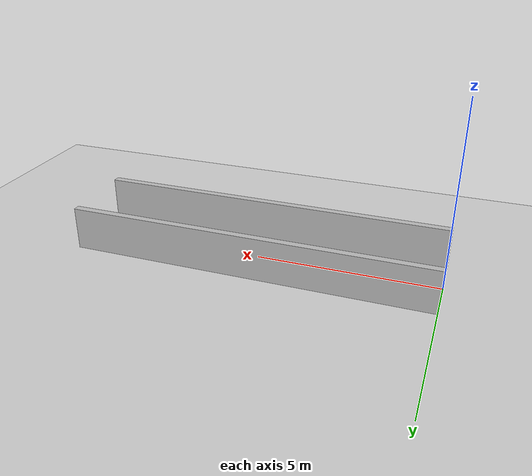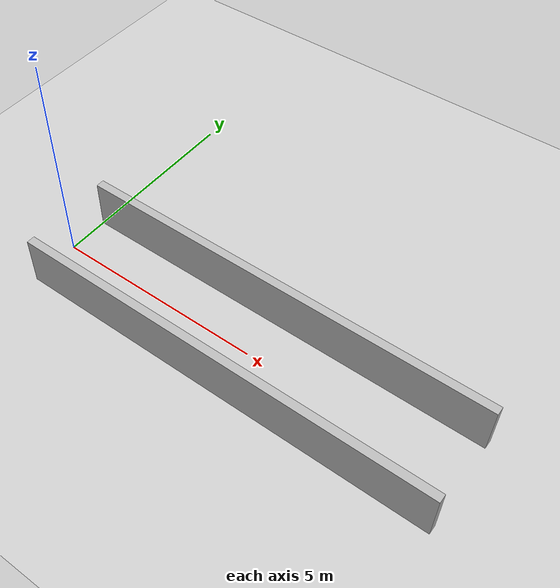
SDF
<?xml version="1.0"?>
<sdf version="1.6">
  <world name="v2-04g-r3-corridor-s5030">
    <gravity>0 0 -9.81</gravity>
    <physics name="v2_deterministic" type="ode">
      <max_step_size>0.002</max_step_size>
      <real_time_update_rate>500</real_time_update_rate>
    </physics>
    <include>
      <uri>model://sun</uri>
    </include>
    <include>
      <uri>model://ground_plane</uri>
    </include>
    <model name="corridor-left">
      <static>true</static>
      <pose>4.987154475 1.090525354 0.600000000 0 0 -0.000410435</pose>
      <link name="link">
        <collision name="collision">
          <geometry>
            <box>
              <size>10.000000 0.200000 1.200000</size>
            </box>
          </geometry>
        </collision>
        <visual name="visual">
          <geometry>
            <box>
              <size>10.000000 0.200000 1.200000</size>
            </box>
          </geometry>
        </visual>
      </link>
    </model>
    <model name="corridor-right">
      <static>true</static>
      <pose>5.009247885 -1.087745302 0.600000000 0 0 -0.000860224</pose>
      <link name="link">
        <collision name="collision">
          <geometry>
            <box>
              <size>10.000000 0.200000 1.200000</size>
            </box>
          </geometry>
        </collision>
        <visual name="visual">
          <geometry>
            <box>
              <size>10.000000 0.200000 1.200000</size>
            </box>
          </geometry>
        </visual>
      </link>
    </model>
  </world>
</sdf>
